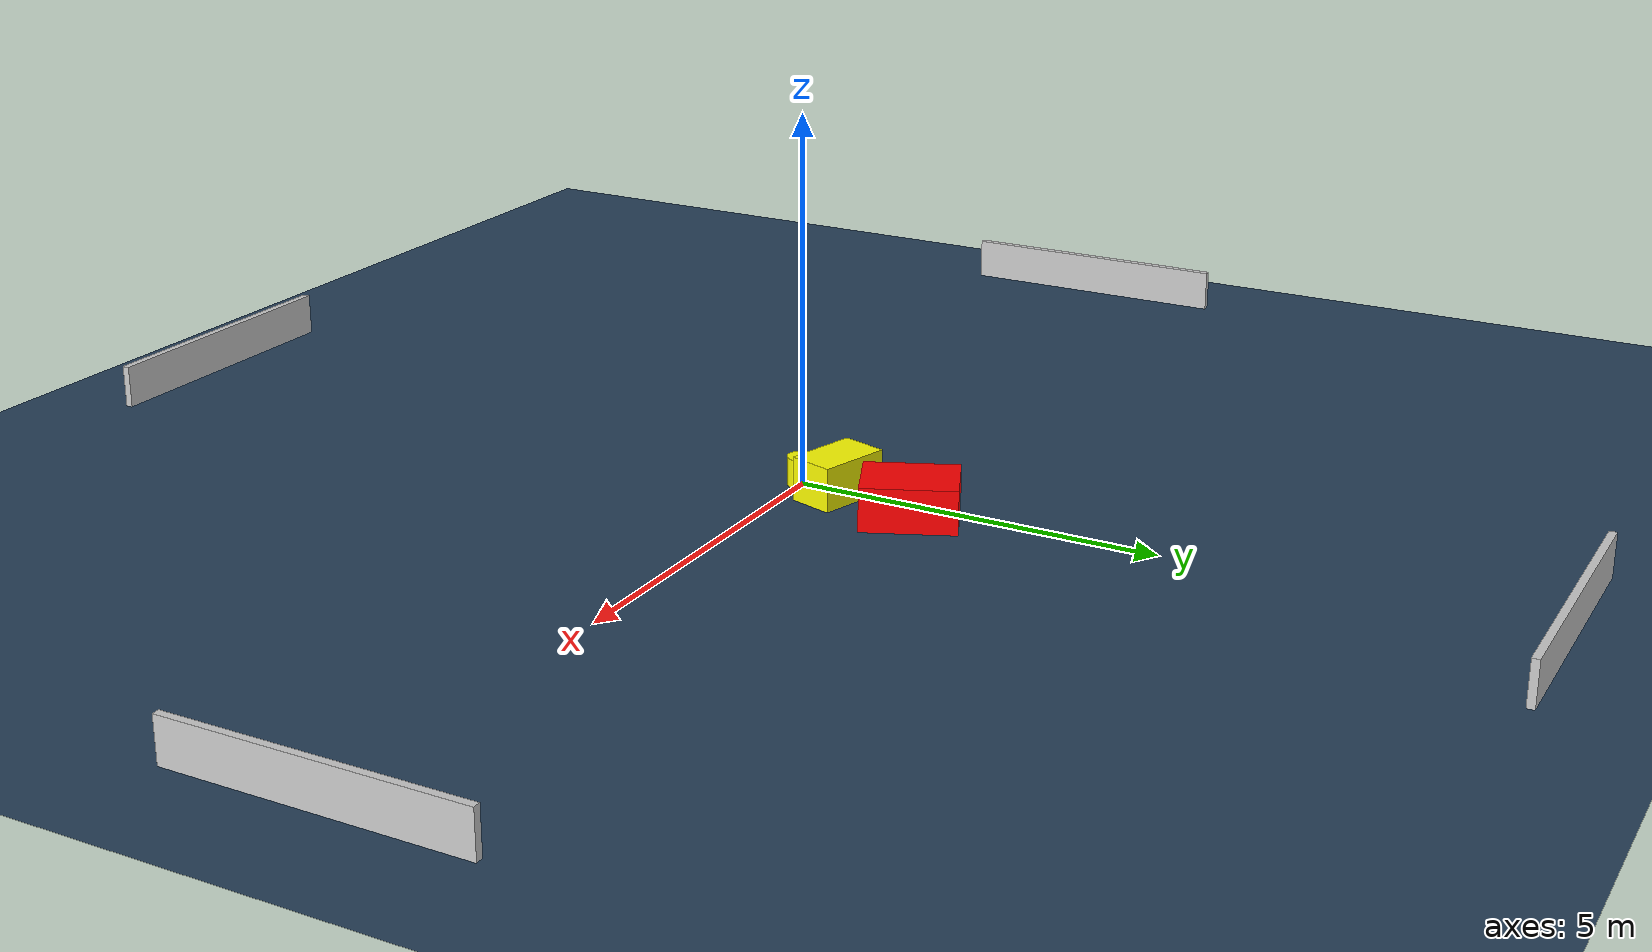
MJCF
<?xml version="1.0" ?>
<mujoco model="generated_environment">
  <option timestep="0.01" integrator="RK4" cone="elliptic"/>
  <default>
    <geom density="1"/>
  </default>
  <asset>
    <texture builtin="gradient" height="3072" name="skybox" rgb1="0.3 0.5 0.7" rgb2="0 0 0" type="skybox" width="512"/>
    <texture builtin="checker" height="300" name="groundplane" rgb1="0.2 0.3 0.4" rgb2="0.1 0.2 0.3" type="2d" width="300"/>
    <material name="groundplane" reflectance="0.2" texrepeat="5 5" texture="groundplane"/>
  </asset>
  <worldbody>
    <light dir="0 0 -1" directional="true" pos="0 0 1.5"/>
    <geom condim="3" friction="0.5 0.005 0.001" material="groundplane" name="floor" pos="0 0 0" size="0 0 0.05" type="plane"/>
    <body name="walls">
      <geom name="wall_1" condim="4" pos="-10.0 0.0 0.3" rgba="0.800000011920929 0.800000011920929 0.800000011920929 1.0" size="0.05 2.0 0.3" type="box"/>
      <geom name="wall_2" condim="4" pos="10.0 0.0 0.3" rgba="0.800000011920929 0.800000011920929 0.800000011920929 1.0" size="0.05 2.0 0.3" type="box"/>
      <geom name="wall_3" condim="4" pos="0.0 -10.0 0.3" rgba="0.800000011920929 0.800000011920929 0.800000011920929 1.0" size="2.0 0.05 0.3" type="box"/>
      <geom name="wall_4" condim="4" pos="0.0 10.0 0.3" rgba="0.800000011920929 0.800000011920929 0.800000011920929 1.0" size="2.0 0.05 0.3" type="box"/>
    </body>
    <body name="robot">
      <joint name="joint_x" type="slide" pos="0 0 0" axis="1 0 0"/>
      <joint name="joint_y" type="slide" pos="0 0 0" axis="0 1 0"/>
      <geom name="robot" type="cylinder" pos="0.0 0.0 0.2" size="0.2 0.2 0.0" mass="5.0" friction="1.0 0.005 0.0001" condim="4" rgba="1.0 1.0 0.0 1.0"/>
    </body>
    <body name="obstacle_1_movable">
      <geom name="obstacle_1_movable" condim="4" pos="0.1530121356347584 0.6069365424529779 0.3" euler="0 0 343.4736067605592" friction="0.0 0.005 0.001" rgba="1.0 1.0 0.0 1.0" size="0.5063731809882067 0.3169117162556897 0.3" type="box" mass="0.1"/>
      <joint type="free"/>
    </body>
    <body name="obstacle_2_static">
      <geom name="obstacle_2_static" condim="4" pos="0.4336510075460784 1.8022015687730721 0.3" euler="0 0 203.42226379197072" friction="0.0 0.005 0.001" rgba="1.0 0.0 0.0 1.0" size="0.4710484318023099 0.6327199888801032 0.3" type="box"/>
    </body>
  </worldbody>
  <actuator>
    <motor name="actuator_x" joint="joint_x" gear="1" ctrlrange="-1 1"/>
    <motor name="actuator_y" joint="joint_y" gear="1" ctrlrange="-1 1"/>
  </actuator>
</mujoco>
